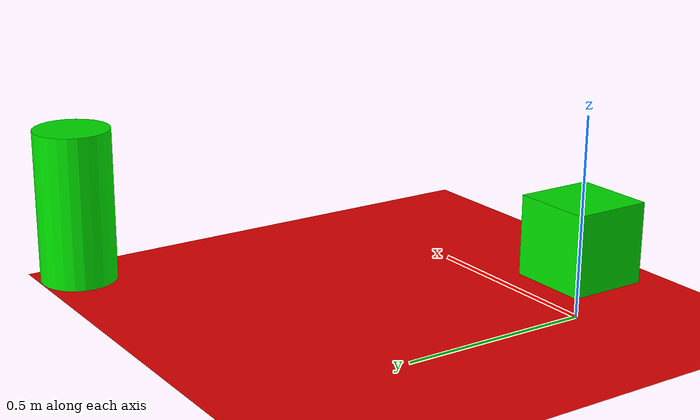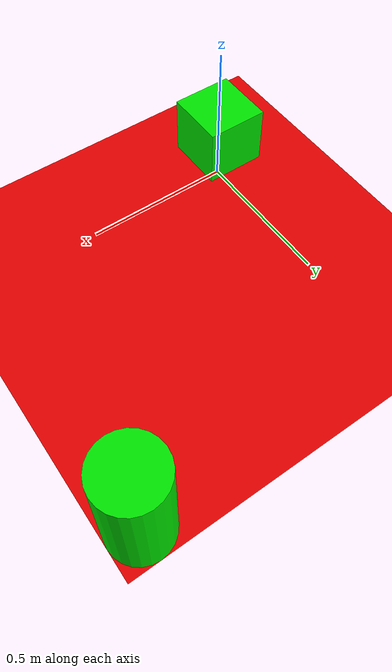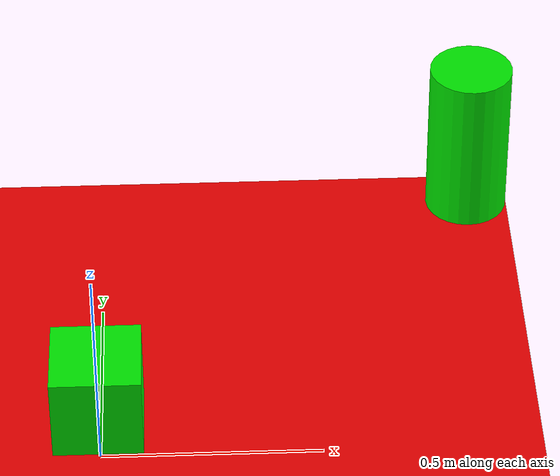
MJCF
<mujoco>
  <worldbody>
    <light diffuse=".5 .5 .5" pos="0 0 3" dir="0 0 -1"/>
    <geom type="plane" size="1 1 0.1" rgba=".9 0 0 1"/>
    <body>
      <joint type="free"/>
      <geom type="box" pos="0 0 0.2" size=".1 .1 .1" rgba="0 .9 0 1"/>
    </body>

    <body>
      <joint type="free"/>
      <geom type="cylinder" pos="0.9 0.9 0.2" size=".1 .2 .3" rgba="0 .9 0 1"/>
    </body>

  </worldbody>
</mujoco>
